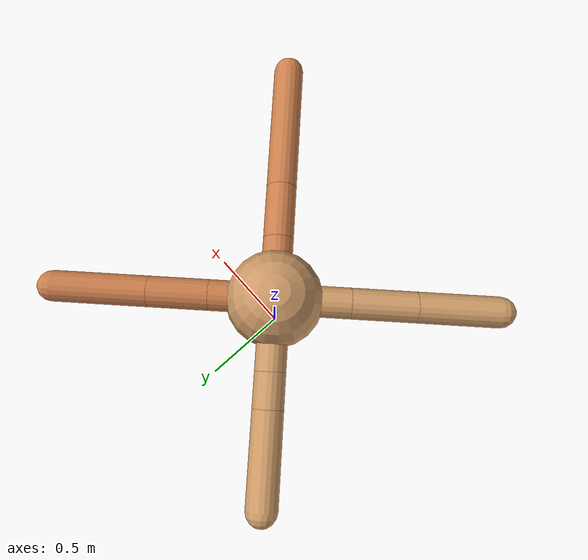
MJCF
<mujoco model="ant">
  <compiler angle="degree" coordinate="local" inertiafromgeom="true" />
  <option integrator="RK4" timestep="0.01" />
  <custom>
    <numeric data="0.0 0.0 0.55 1.0 0.0 0.0 0.0 0.0 1.0 0.0 -1.0 0.0 -1.0 0.0 1.0" name="init_qpos" />
  </custom>
  <default>
    <joint armature="1" damping="1" limited="true" />
    <geom conaffinity="0" condim="3" density="5.0" friction="1.5 0.1 0.1" margin="0.01" rgba="0.8 0.6 0.4 1" />
  </default>
  <worldbody>
    <body name="torso" pos="0 0 0.75">
      <geom name="torso_geom" pos="0 0 0" size="0.25" type="sphere" />

      <body name="front_left_leg" pos="0 0 0">
        <geom fromto="0.0 0.0 0.0 0.23815010121161084 0.23815010121161084 0.0" name="aux_1_geom" size="0.08" type="capsule" rgba=".8 .5 .3 1" />
        <body name="aux_1" pos="0.23815010121161084 0.23815010121161084 0.0">
          <joint axis="0 0 1" name="hip_1" pos="0.0 0.0 0.0" range="-40 40" type="hinge" />
          <geom fromto="0.0 0.0 0.0 0.21759806187153985 0.21759806187153985 0.0" name="left_leg_geom" size="0.08" type="capsule" rgba=".8 .5 .3 1" />
          <body pos="0.21759806187153985 0.21759806187153985 0.0" name="front_left_foot">
            <joint axis="-1 1 0" name="ankle_1" pos="0.0 0.0 0.0" range="30 100" type="hinge" />
            <geom fromto="0.0 0.0 0.0 0.34531944845816875 0.34531944845816875 0.0" name="left_ankle_geom" size="0.08" type="capsule" rgba=".8 .5 .3 1" />
          </body>
        </body>
      </body>
      <body name="front_right_leg" pos="0 0 0">
        <geom fromto="0.0 0.0 0.0 -0.2598314383001627 0.2598314383001627 0.0" name="aux_2_geom" size="0.08" type="capsule" />
        <body name="aux_2" pos="-0.2598314383001627 0.2598314383001627 0.0">
          <joint axis="0 0 1" name="hip_2" pos="0.0 0.0 0.0" range="-40 40" type="hinge" />
          <geom fromto="0.0 0.0 0.0 -0.12758599802997997 0.12758599802997997 0.0" name="right_leg_geom" size="0.08" type="capsule" />
          <body pos="-0.12758599802997997 0.12758599802997997 0.0" name="front_right_foot">
            <joint axis="1 1 0" name="ankle_2" pos="0.0 0.0 0.0" range="-100 -30" type="hinge" />
            <geom fromto="0.0 0.0 0.0 -0.32711605508059505 0.32711605508059505 0.0" name="right_ankle_geom" size="0.08" type="capsule" />
          </body>
        </body>
      </body>
      <body name="left_back_leg" pos="0 0 0">
        <geom fromto="0.0 0.0 0.0 -0.2729283429574396 -0.2729283429574396 0.0" name="aux_3_geom" size="0.08" type="capsule" />
        <body name="aux_3" pos="-0.2729283429574396 -0.2729283429574396 0.0">
          <joint axis="0 0 1" name="hip_3" pos="0.0 0.0 0.0" range="-40 40" type="hinge" />
          <geom fromto="0.0 0.0 0.0 -0.2353503196252333 -0.2353503196252333 0.0" name="back_leg_geom" size="0.08" type="capsule" />
          <body pos="-0.2353503196252333 -0.2353503196252333 0.0" name="left_back_foot">
            <joint axis="-1 1 0" name="ankle_3" pos="0.0 0.0 0.0" range="-100 -30" type="hinge" />
            <geom fromto="0.0 0.0 0.0 -0.2976153462828339 -0.2976153462828339 0.0" name="third_ankle_geom" size="0.08" type="capsule" />
          </body>
        </body>
      </body>
      <body name="right_back_leg" pos="0 0 0">
        <geom fromto="0.0 0.0 0.0 0.22545790763956475 -0.22545790763956475 0.0" name="aux_4_geom" size="0.08" type="capsule" rgba=".8 .5 .3 1" />
        <body name="aux_4" pos="0.22545790763956475 -0.22545790763956475 0.0">
          <joint axis="0 0 1" name="hip_4" pos="0.0 0.0 0.0" range="-40 40" type="hinge" />
          <geom fromto="0.0 0.0 0.0 0.20088491550637488 -0.20088491550637488 0.0" name="rightback_leg_geom" size="0.08" type="capsule" rgba=".8 .5 .3 1" />
          <body pos="0.20088491550637488 -0.20088491550637488 0.0" name="right_back_foot">
            <joint axis="1 1 0" name="ankle_4" pos="0.0 0.0 0.0" range="30 100" type="hinge" />
            <geom fromto="0.0 0.0 0.0 0.4820329493606087 -0.4820329493606087 0.0" name="fourth_ankle_geom" size="0.08" type="capsule" rgba=".8 .5 .3 1" />
          </body>
        </body>
      </body>
    </body>
  </worldbody>
  <actuator>
    <motor ctrllimited="true" ctrlrange="-1.0 1.0" joint="hip_4" gear="150" />
    <motor ctrllimited="true" ctrlrange="-1.0 1.0" joint="ankle_4" gear="150" />
    <motor ctrllimited="true" ctrlrange="-1.0 1.0" joint="hip_1" gear="150" />
    <motor ctrllimited="true" ctrlrange="-1.0 1.0" joint="ankle_1" gear="150" />
    <motor ctrllimited="true" ctrlrange="-1.0 1.0" joint="hip_2" gear="150" />
    <motor ctrllimited="true" ctrlrange="-1.0 1.0" joint="ankle_2" gear="150" />
    <motor ctrllimited="true" ctrlrange="-1.0 1.0" joint="hip_3" gear="150" />
    <motor ctrllimited="true" ctrlrange="-1.0 1.0" joint="ankle_3" gear="150" />
  </actuator>
</mujoco>
